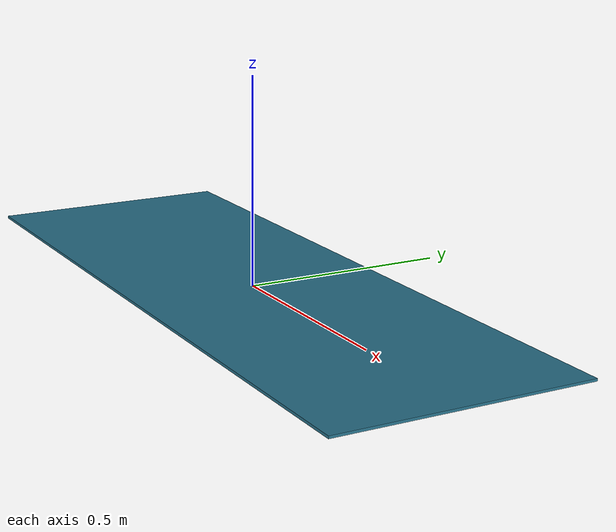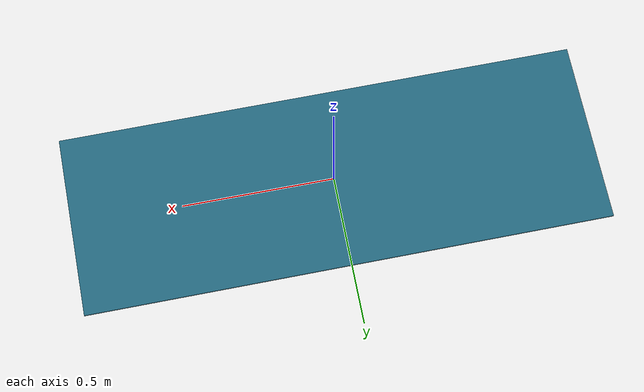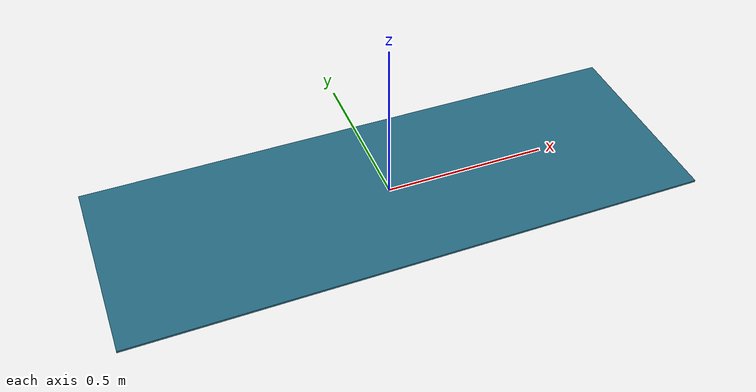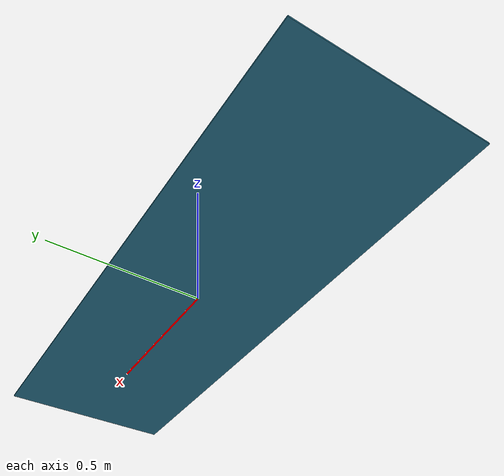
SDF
<?xml version="1.0" ?>
<sdf version="1.9">
  <model name="sim_mat">
    <static>true</static>
    <link name="surface">
      <visual name="surface_visual">
        <pose>0 0 0.003 0 0 0</pose>
        <geometry><box><size>1.73 0.61 0.006</size></box></geometry>
        <material><ambient>0.16 0.45 0.55 1</ambient><diffuse>0.16 0.45 0.55 1</diffuse></material>
      </visual>
    </link>
  </model>
</sdf>
